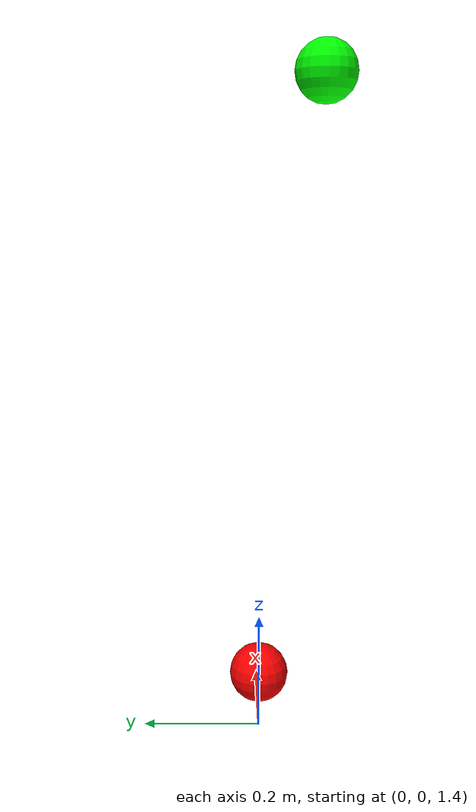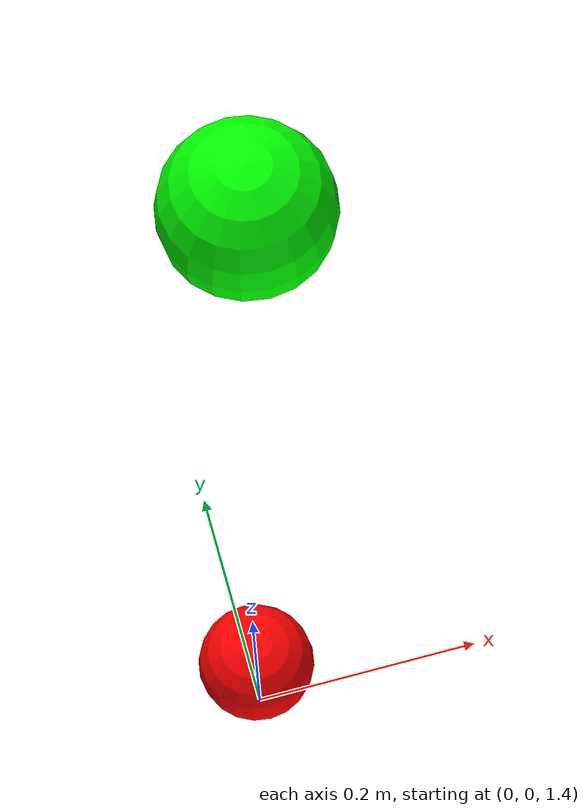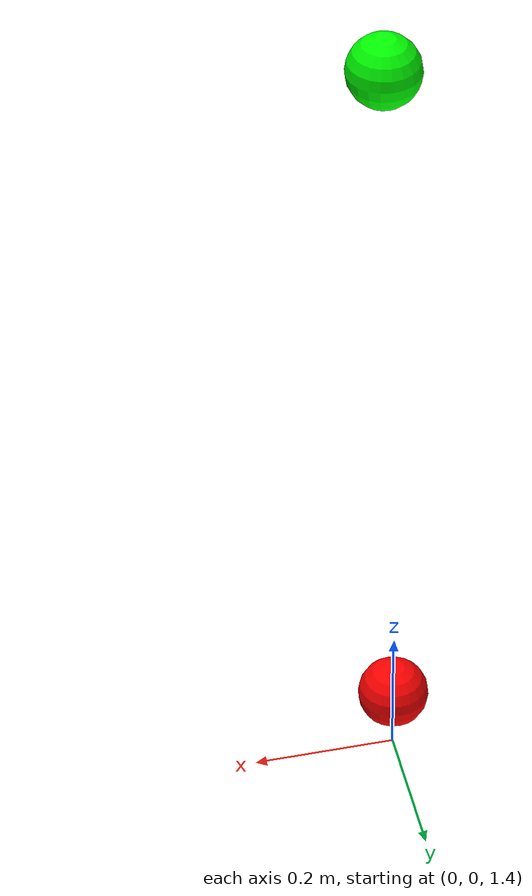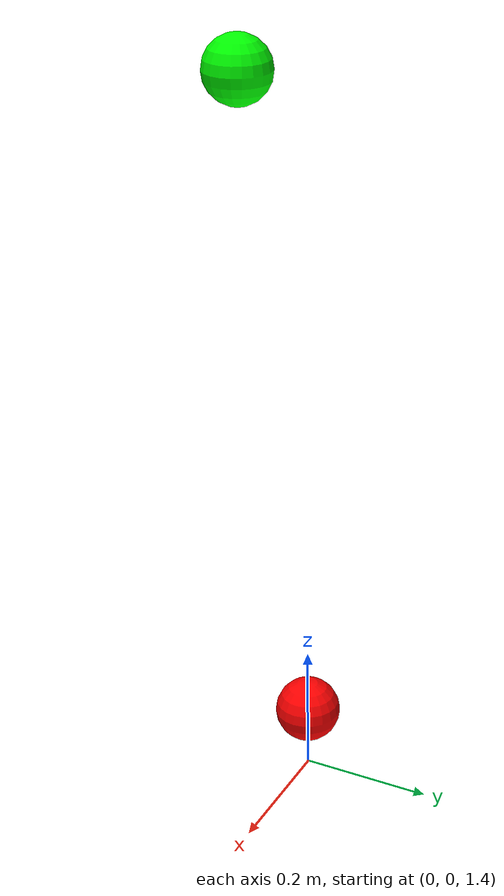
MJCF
<!-- https://mujoco.readthedocs.io/en/latest/overview.html?highlight=hello.xml#examples -->
<mujoco>
  <option gravity = "0 0 -9.81" integrator="RK4" timestep="0.0005" />
   <worldbody>
      <light diffuse="0 0 0" pos="0 0 10" dir="0 0 -1"/>
      <body pos="0 0 1" euler="0 180 0">
         <joint name="joint0" type="hinge" axis = "0 -1 0" pos = "0 0 0.5" damping="1.4"/>
         <geom type="sphere" size="0.05" rgba="1 0 0 1" mass="0.8" pos="0 0 -0.5"/>
         <body pos="0 -0.1 -1" euler="0 0 0">
           <joint name="joint1" type="hinge" axis = "0 -1 0" pos = "0 0 0.5" damping="1.2"/>
           <geom type="sphere" size="0.05" rgba="0 1 0 1" mass="0.8" pos="0 0 -0.5"/>
         </body>
      </body>
    </worldbody>
   <actuator>
     <motor name="torque0" joint="joint0"  gear="1" />
     <motor name="torque1" joint="joint1"  gear="1" />
   </actuator>
</mujoco>
